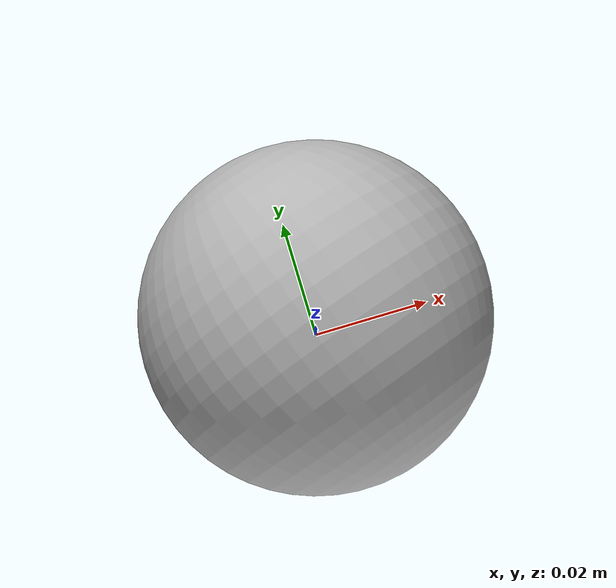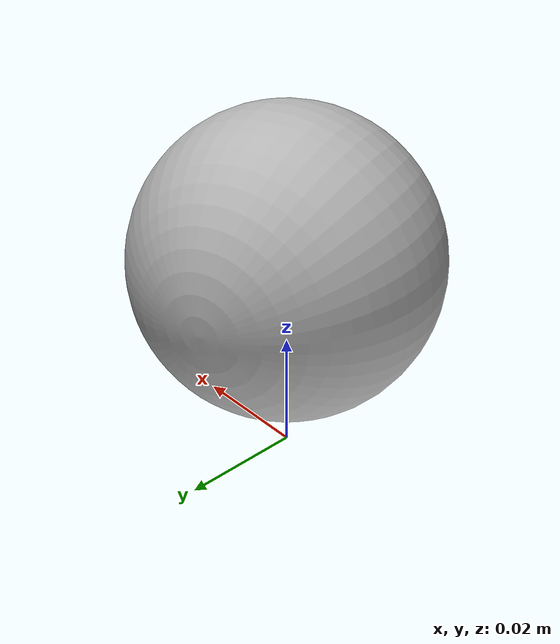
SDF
<sdf version='1.6'>
  <model name='phere'>
    <link name='object (9)'>
      <pose frame=''>0 0 0.035 0 -0 0</pose>
      <inertial>
        <pose frame=''>-0 0 0 0 -0 0</pose>
        <mass>0.06545</mass>
        <inertia>
          <ixx>1.63625e-05</ixx>
          <ixy>-3.24151e-38</ixy>
          <ixz>5.29396e-22</ixz>
          <iyy>1.63625e-05</iyy>
          <iyz>0</iyz>
          <izz>1.63625e-05</izz>
        </inertia>
      </inertial>
      <collision name='object_collision'>
        <pose frame=''>0 0 0 0 -0 0</pose>
        <geometry>
          <mesh>
            <scale>1 1 1</scale>
            <uri>model://phere/untitled.dae</uri>
          </mesh>
        </geometry>
        <surface>
          <friction>
            <ode>
              <mu>1.0</mu>
              <mu2>1.0</mu2>
            </ode>
          </friction>
          <contact>
            <ode>
              <kp>100000.0</kp>
              <kd>1.0</kd>
              <min_depth>0.0000001</min_depth>
              <max_vel>0.1</max_vel>
            </ode>
          </contact>
        </surface>
      </collision>
      <visual name='object_visual'>
        <pose frame=''>0 0 0 0 -0 0</pose>
        <geometry>
          <mesh>
            <scale>1 1 1</scale>
            <uri>model://phere/untitled.dae</uri>
          </mesh>
        </geometry>
      </visual>
    </link>
  </model>
</sdf>
